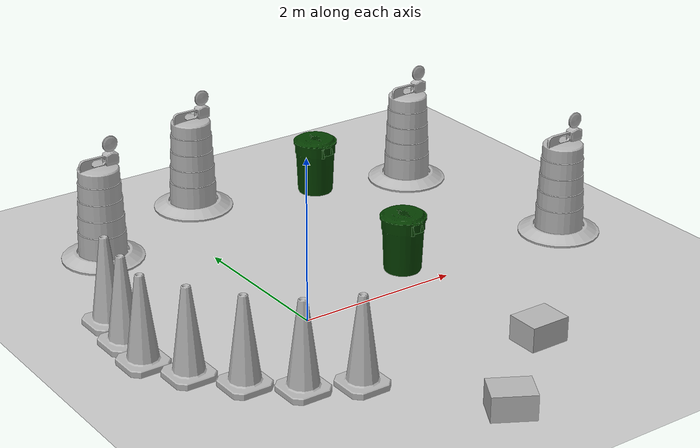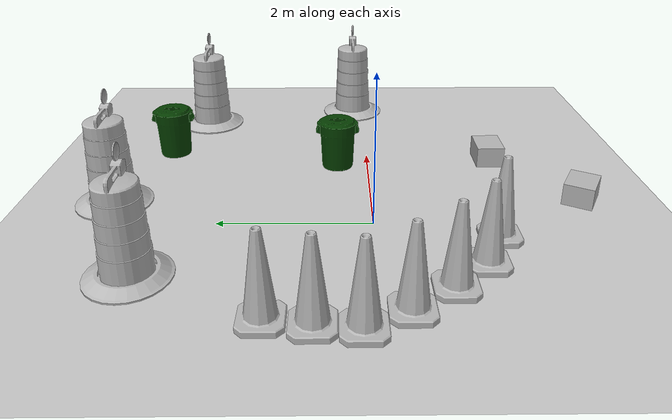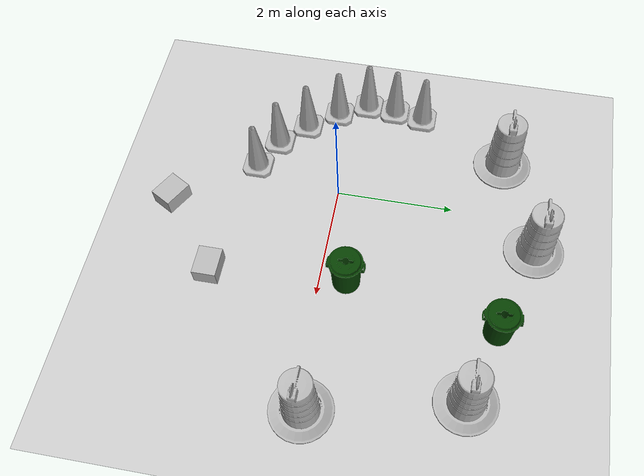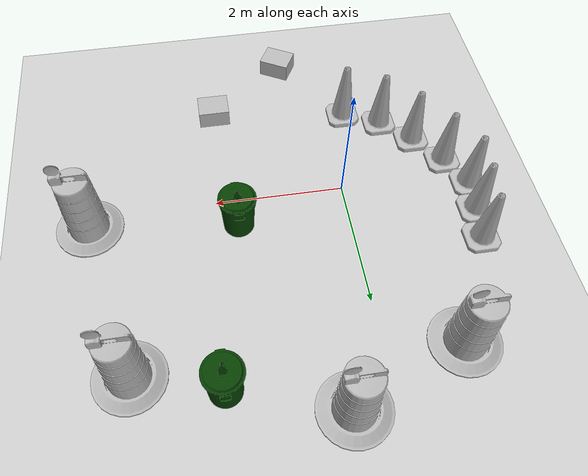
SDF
<sdf version="1.7">
 <world name="default">
  <light name="sun" type="directional">
   <pose>0 0 10 0 -0 0</pose>
   <diffuse>0.8 0.8 0.8 1</diffuse>
   <specular>0.1 0.1 0.1 1</specular>
   <attenuation>
    <range>1000</range>
    <constant>0.9</constant>
    <linear>0.01</linear>
    <quadratic>0.001</quadratic>
   </attenuation>
   <direction>-0.5 0.5 -1</direction>
   <spot><inner_angle>0</inner_angle><outer_angle>0</outer_angle><falloff>0</falloff></spot>
  </light>
  <model name="ground_plane">
   <static>1</static>
   <link name="link">
    <collision name="collision">
     <geometry><plane><normal>0 0 1</normal><size>100 100</size></plane></geometry>
     <surface><friction><ode><mu>100</mu><mu2>50</mu2></ode></friction></surface>
    </collision>
    <visual name="visual">
     <cast_shadows>0</cast_shadows>
     <geometry><plane><normal>0 0 1</normal><size>100 100</size></plane></geometry>
     <material>
      <script><uri>file://media/materials/scripts/gazebo.material</uri><name>Gazebo/Grey</name></script>
     </material>
    </visual>
   </link>
  </model>
  <gravity>0 0 -9.8</gravity>
  <magnetic_field>6e-06 2.3e-05 -4.2e-05</magnetic_field>
  <atmosphere type="adiabatic"/>
  <physics type="ode">
   <max_step_size>0.001</max_step_size>
   <real_time_factor>1</real_time_factor>
   <real_time_update_rate>1000</real_time_update_rate>
  </physics>
  <scene><ambient>0.4 0.4 0.4 1</ambient><background>0.7 0.7 0.7 1</background><shadows>1</shadows></scene>
  <audio><device>default</device></audio>
  <spherical_coordinates>
   <surface_model>EARTH_WGS84</surface_model>
   <latitude_deg>0</latitude_deg>
   <longitude_deg>0</longitude_deg>
   <elevation>0</elevation>
   <heading_deg>0</heading_deg>
  </spherical_coordinates>
  <model name="cardboard_box">
   <pose>1.84421 -1.83372 0.149 0 -0 0</pose>
   <link name="link">
    <inertial>
     <mass>2</mass>
     <inertia>
      <ixx>0.0416667</ixx>
      <ixy>0</ixy>
      <ixz>0</ixz>
      <iyy>0.0566667</iyy>
      <iyz>0</iyz>
      <izz>0.0683333</izz>
     </inertia>
    </inertial>
    <collision name="collision">
     <geometry><box><size>0.5 0.4 0.3</size></box></geometry>
     <surface>
      <friction><ode><mu>1</mu><mu2>1</mu2></ode></friction>
      <contact><ode><kp>1e+07</kp><kd>1</kd><min_depth>0.001</min_depth><max_vel>0.1</max_vel></ode></contact>
     </surface>
    </collision>
    <visual name="visual">
     <pose>0 0 -0.15 0 -0 0</pose>
     <geometry>
      <mesh><uri>model://cardboard_box/meshes/cardboard_box.dae</uri><scale>1.25932 1.00745 0.755591</scale></mesh>
     </geometry>
    </visual>
   </link>
  </model>
  <model name="Construction Cone">
   <link name="link">
    <collision name="collision">
     <geometry>
      <mesh><scale>10 10 10</scale><uri>model://construction_cone/meshes/construction_cone.dae</uri></mesh>
     </geometry>
    </collision>
    <visual name="visual">
     <geometry>
      <mesh><scale>10 10 10</scale><uri>model://construction_cone/meshes/construction_cone.dae</uri></mesh>
     </geometry>
    </visual>
    <inertial>
     <inertia><ixx>1</ixx><ixy>0</ixy><ixz>0</ixz><iyy>1</iyy><iyz>0</iyz><izz>1</izz></inertia>
     <mass>1</mass>
    </inertial>
   </link>
   <pose>-0.339843 -1.52568 -0 0 -0 0</pose>
  </model>
  <model name="Construction Barrel">
   <link name="link">
    <inertial>
     <pose>0 0 0.4 0 -0 0</pose>
     <mass>500</mass>
     <inertia><ixx>51.2096</ixx><iyy>51.2096</iyy><izz>25</izz><ixy>0</ixy><ixz>0</ixz><iyz>0</iyz></inertia>
    </inertial>
    <collision name="collision">
     <geometry><mesh><uri>model://construction_barrel/meshes/construction_barrel.dae</uri></mesh></geometry>
    </collision>
    <visual name="visual">
     <geometry><mesh><uri>model://construction_barrel/meshes/construction_barrel.dae</uri></mesh></geometry>
    </visual>
   </link>
   <pose>3.38413 2.60442 -1e-06 1e-06 -9e-06 -2e-05</pose>
  </model>
  <model name="Construction Barrel_0">
   <link name="link">
    <inertial>
     <pose>0 0 0.4 0 -0 0</pose>
     <mass>500</mass>
     <inertia><ixx>51.2096</ixx><iyy>51.2096</iyy><izz>25</izz><ixy>0</ixy><ixz>0</ixz><iyz>0</iyz></inertia>
    </inertial>
    <collision name="collision">
     <geometry><mesh><uri>model://construction_barrel/meshes/construction_barrel.dae</uri></mesh></geometry>
    </collision>
    <visual name="visual">
     <geometry><mesh><uri>model://construction_barrel/meshes/construction_barrel.dae</uri></mesh></geometry>
    </visual>
   </link>
   <pose>-1.09886 2.78516 -1e-06 1e-06 -9e-06 -2e-05</pose>
  </model>
  <model name="first_2015_trash_can">
   <link name="link">
    <inertial>
     <pose>0 0 0.3683 0 -0 0</pose>
     <mass>4.83076</mass>
     <inertia>
      <ixx>0.281534</ixx>
      <ixy>0</ixy>
      <ixz>0</ixz>
      <iyy>0.281534</iyy>
      <iyz>0</iyz>
      <izz>0.126223</izz>
     </inertia>
    </inertial>
    <visual name="visual">
     <geometry><mesh><uri>model://first_2015_trash_can/meshes/trash_can.dae</uri></mesh></geometry>
    </visual>
    <collision name="collision">
     <geometry><mesh><uri>model://first_2015_trash_can/meshes/trash_can.dae</uri></mesh></geometry>
    </collision>
   </link>
   <pose>2.16292 2.97398 -5e-06 -4e-06 2.1e-05 -0.000653</pose>
  </model>
  <model name="Construction Cone_clone">
   <link name="link">
    <collision name="collision">
     <geometry>
      <mesh><scale>10 10 10</scale><uri>model://construction_cone/meshes/construction_cone.dae</uri></mesh>
     </geometry>
    </collision>
    <visual name="visual">
     <geometry>
      <mesh><scale>10 10 10</scale><uri>model://construction_cone/meshes/construction_cone.dae</uri></mesh>
     </geometry>
    </visual>
    <inertial>
     <inertia><ixx>1</ixx><ixy>0</ixy><ixz>0</ixz><iyy>1</iyy><iyz>0</iyz><izz>1</izz></inertia>
     <mass>1</mass>
    </inertial>
   </link>
   <pose>-0.911023 -1.25607 -0 0 -0 0</pose>
  </model>
  <model name="Construction Cone_clone_0">
   <link name="link">
    <collision name="collision">
     <geometry>
      <mesh><scale>10 10 10</scale><uri>model://construction_cone/meshes/construction_cone.dae</uri></mesh>
     </geometry>
    </collision>
    <visual name="visual">
     <geometry>
      <mesh><scale>10 10 10</scale><uri>model://construction_cone/meshes/construction_cone.dae</uri></mesh>
     </geometry>
    </visual>
    <inertial>
     <inertia><ixx>1</ixx><ixy>0</ixy><ixz>0</ixz><iyy>1</iyy><iyz>0</iyz><izz>1</izz></inertia>
     <mass>1</mass>
    </inertial>
   </link>
   <pose>-1.35803 -0.817173 -1e-05 -1e-06 0 0</pose>
  </model>
  <model name="Construction Cone_clone_1">
   <link name="link">
    <collision name="collision">
     <geometry>
      <mesh><scale>10 10 10</scale><uri>model://construction_cone/meshes/construction_cone.dae</uri></mesh>
     </geometry>
    </collision>
    <visual name="visual">
     <geometry>
      <mesh><scale>10 10 10</scale><uri>model://construction_cone/meshes/construction_cone.dae</uri></mesh>
     </geometry>
    </visual>
    <inertial>
     <inertia><ixx>1</ixx><ixy>0</ixy><ixz>0</ixz><iyy>1</iyy><iyz>0</iyz><izz>1</izz></inertia>
     <mass>1</mass>
    </inertial>
   </link>
   <pose>-1.73843 -0.305999 -0 1e-06 -0 0</pose>
  </model>
  <model name="Construction Cone_clone_2">
   <link name="link">
    <collision name="collision">
     <geometry>
      <mesh><scale>10 10 10</scale><uri>model://construction_cone/meshes/construction_cone.dae</uri></mesh>
     </geometry>
    </collision>
    <visual name="visual">
     <geometry>
      <mesh><scale>10 10 10</scale><uri>model://construction_cone/meshes/construction_cone.dae</uri></mesh>
     </geometry>
    </visual>
    <inertial>
     <inertia><ixx>1</ixx><ixy>0</ixy><ixz>0</ixz><iyy>1</iyy><iyz>0</iyz><izz>1</izz></inertia>
     <mass>1</mass>
    </inertial>
   </link>
   <pose>-2.00696 0.203188 -1e-05 -1e-06 0 0</pose>
  </model>
  <model name="Construction Cone_clone_3">
   <link name="link">
    <collision name="collision">
     <geometry>
      <mesh><scale>10 10 10</scale><uri>model://construction_cone/meshes/construction_cone.dae</uri></mesh>
     </geometry>
    </collision>
    <visual name="visual">
     <geometry>
      <mesh><scale>10 10 10</scale><uri>model://construction_cone/meshes/construction_cone.dae</uri></mesh>
     </geometry>
    </visual>
    <inertial>
     <inertia><ixx>1</ixx><ixy>0</ixy><ixz>0</ixz><iyy>1</iyy><iyz>0</iyz><izz>1</izz></inertia>
     <mass>1</mass>
    </inertial>
   </link>
   <pose>-1.95549 0.711383 -0 0 -1e-06 0</pose>
  </model>
  <model name="Construction Cone_clone_4">
   <link name="link">
    <collision name="collision">
     <geometry>
      <mesh><scale>10 10 10</scale><uri>model://construction_cone/meshes/construction_cone.dae</uri></mesh>
     </geometry>
    </collision>
    <visual name="visual">
     <geometry>
      <mesh><scale>10 10 10</scale><uri>model://construction_cone/meshes/construction_cone.dae</uri></mesh>
     </geometry>
    </visual>
    <inertial>
     <inertia><ixx>1</ixx><ixy>0</ixy><ixz>0</ixz><iyy>1</iyy><iyz>0</iyz><izz>1</izz></inertia>
     <mass>1</mass>
    </inertial>
   </link>
   <pose>-1.87089 1.23427 -0 0 -1e-06 0</pose>
  </model>
  <model name="Construction Barrel_0_clone">
   <link name="link">
    <inertial>
     <pose>0 0 0.4 0 -0 0</pose>
     <mass>500</mass>
     <inertia><ixx>51.2096</ixx><iyy>51.2096</iyy><izz>25</izz><ixy>0</ixy><ixz>0</ixz><iyz>0</iyz></inertia>
    </inertial>
    <collision name="collision">
     <geometry><mesh><uri>model://construction_barrel/meshes/construction_barrel.dae</uri></mesh></geometry>
    </collision>
    <visual name="visual">
     <geometry><mesh><uri>model://construction_barrel/meshes/construction_barrel.dae</uri></mesh></geometry>
    </visual>
   </link>
   <pose>0.577847 3.454 -2e-06 4e-06 7e-06 -2.6e-05</pose>
  </model>
  <model name="Construction Barrel_0_clone_0">
   <link name="link">
    <inertial>
     <pose>0 0 0.4 0 -0 0</pose>
     <mass>500</mass>
     <inertia><ixx>51.2096</ixx><iyy>51.2096</iyy><izz>25</izz><ixy>0</ixy><ixz>0</ixz><iyz>0</iyz></inertia>
    </inertial>
    <collision name="collision">
     <geometry><mesh><uri>model://construction_barrel/meshes/construction_barrel.dae</uri></mesh></geometry>
    </collision>
    <visual name="visual">
     <geometry><mesh><uri>model://construction_barrel/meshes/construction_barrel.dae</uri></mesh></geometry>
    </visual>
   </link>
   <pose>3.92591 0.169241 -2e-06 4e-06 7e-06 -2.6e-05</pose>
  </model>
  <model name="cardboard_box_clone">
   <pose>0.592236 -2.83626 0.149 0 0 -0.512723</pose>
   <link name="link">
    <inertial>
     <mass>2</mass>
     <inertia>
      <ixx>0.0416667</ixx>
      <ixy>0</ixy>
      <ixz>0</ixz>
      <iyy>0.0566667</iyy>
      <iyz>0</iyz>
      <izz>0.0683333</izz>
     </inertia>
    </inertial>
    <collision name="collision">
     <geometry><box><size>0.5 0.4 0.3</size></box></geometry>
     <surface>
      <friction><ode><mu>1</mu><mu2>1</mu2></ode></friction>
      <contact><ode><kp>1e+07</kp><kd>1</kd><min_depth>0.001</min_depth><max_vel>0.1</max_vel></ode></contact>
     </surface>
    </collision>
    <visual name="visual">
     <pose>0 0 -0.15 0 -0 0</pose>
     <geometry>
      <mesh><uri>model://cardboard_box/meshes/cardboard_box.dae</uri><scale>1.25932 1.00745 0.755591</scale></mesh>
     </geometry>
    </visual>
   </link>
  </model>
  <model name="first_2015_trash_can_clone">
   <link name="link">
    <inertial>
     <pose>0 0 0.3683 0 -0 0</pose>
     <mass>4.83076</mass>
     <inertia>
      <ixx>0.281534</ixx>
      <ixy>0</ixy>
      <ixz>0</ixz>
      <iyy>0.281534</iyy>
      <iyz>0</iyz>
      <izz>0.126223</izz>
     </inertia>
    </inertial>
    <visual name="visual">
     <geometry><mesh><uri>model://first_2015_trash_can/meshes/trash_can.dae</uri></mesh></geometry>
    </visual>
    <collision name="collision">
     <geometry><mesh><uri>model://first_2015_trash_can/meshes/trash_can.dae</uri></mesh></geometry>
    </collision>
   </link>
   <pose>1.68844 0.447234 -5e-06 1e-06 2.1e-05 -0.000666</pose>
  </model>
 </world>
</sdf>
